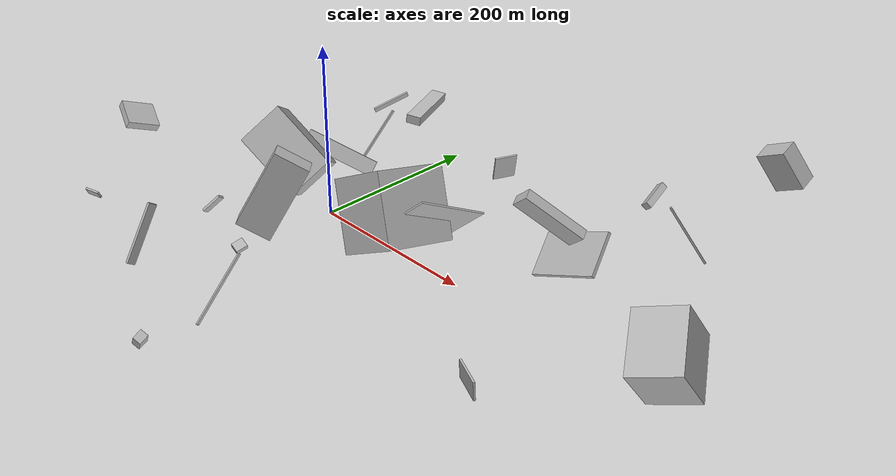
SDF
<sdf version="1.6">
 <world name="default">
  <scene>
   <sky><clouds><speed>12</speed></clouds></sky>
   <ambient>0.4 0.4 0.4 1</ambient>
   <background>0.7 0.7 0.7 1</background>
   <shadows>1</shadows>
  </scene>
  <gravity>0 0 -9.8066</gravity>
  <magnetic_field>6e-06 2.3e-05 -4.2e-05</magnetic_field>
  <physics default="0" name="default_physics" type="ode">
   <ode>
    <solver>
     <type>quick</type>
     <iters>10</iters>
     <sor>1.0</sor>
     <use_dynamic_moi_rescaling>0</use_dynamic_moi_rescaling>
    </solver>
    <constraints>
     <cfm>0</cfm>
     <erp>0.2</erp>
     <contact_max_correcting_vel>100</contact_max_correcting_vel>
     <contact_surface_layer>0.001</contact_surface_layer>
    </constraints>
   </ode>
   <max_step_size>0.004</max_step_size>
   <real_time_factor>1</real_time_factor>
   <real_time_update_rate>250</real_time_update_rate>
  </physics>
  <light name="sun" type="directional">
   <pose>0 0 10 0 0 0</pose>
   <diffuse>0.8 0.8 0.8 1</diffuse>
   <specular>0.2 0.2 0.2 1</specular>
   <attenuation>
    <range>1000</range>
    <constant>0.9</constant>
    <linear>0.01</linear>
    <quadratic>0.001</quadratic>
   </attenuation>
   <direction>-0.5 0.1 -0.9</direction>
  </light>
  <model name="building_1">
   <static>0</static>
   <pose>-6.447557590875202 164.78390926605329 72.39773657798332 0.32840268616260365 1.4576152847573998 -2.3852676535406427</pose>
   <link name="link">
    <gravity>0</gravity>
    <pose>0 0 8.5 0 0 0</pose>
    <collision name="collision"><geometry><box><size>10 80 17</size></box></geometry></collision>
    <visual name="visual">
     <cast_shadows>0</cast_shadows>
     <geometry><box><size>10 80 17</size></box></geometry>
     <material>
      <script>
       <uri>model://HANNAS_wall/materials/scripts</uri>
       <uri>model://HANNAS_wall/materials/textures</uri>
       <name>vrc/HANNAS_wall</name>
      </script>
     </material>
    </visual>
   </link>
  </model>
  <model name="building_2">
   <static>0</static>
   <pose>286.7653517202865 46.902354183824954 102.46931979818754 2.551336737582803 -0.6661779864026669 -2.3565618510237267</pose>
   <link name="link">
    <gravity>0</gravity>
    <pose>0 0 11.0 0 0 0</pose>
    <collision name="collision"><geometry><box><size>72 11 22</size></box></geometry></collision>
    <visual name="visual">
     <cast_shadows>0</cast_shadows>
     <geometry><box><size>72 11 22</size></box></geometry>
     <material>
      <script>
       <uri>model://HANNAS_wall/materials/scripts</uri>
       <uri>model://HANNAS_wall/materials/textures</uri>
       <name>vrc/HANNAS_wall</name>
      </script>
     </material>
    </visual>
   </link>
  </model>
  <model name="building_3">
   <static>0</static>
   <pose>42.546115004991506 28.99099549315713 61.7883027929175 1.1025642131273528 -0.48380457232371 -0.7459313777308747</pose>
   <link name="link">
    <gravity>0</gravity>
    <pose>0 0 40.0 0 0 0</pose>
    <collision name="collision"><geometry><box><size>9 17 80</size></box></geometry></collision>
    <visual name="visual">
     <cast_shadows>0</cast_shadows>
     <geometry><box><size>9 17 80</size></box></geometry>
     <material>
      <script>
       <uri>model://HANNAS_wall/materials/scripts</uri>
       <uri>model://HANNAS_wall/materials/textures</uri>
       <name>vrc/HANNAS_wall</name>
      </script>
     </material>
    </visual>
   </link>
  </model>
  <model name="building_4">
   <static>0</static>
   <pose>75.10144451144293 -198.84436308982075 26.94266111235453 0.5590833414045882 0.6013746304214567 -1.3346621504665377</pose>
   <link name="link">
    <gravity>0</gravity>
    <pose>0 0 1.0 0 0 0</pose>
    <collision name="collision"><geometry><box><size>80 4 2</size></box></geometry></collision>
    <visual name="visual">
     <cast_shadows>0</cast_shadows>
     <geometry><box><size>80 4 2</size></box></geometry>
     <material>
      <script>
       <uri>model://HANNAS_wall/materials/scripts</uri>
       <uri>model://HANNAS_wall/materials/textures</uri>
       <name>vrc/HANNAS_wall</name>
      </script>
     </material>
    </visual>
   </link>
  </model>
  <model name="building_5">
   <static>0</static>
   <pose>-11.335936418992985 -66.80196936323286 77.56720973423685 0.6658472836731935 -0.6830212310876818 -2.84878728538751</pose>
   <link name="link">
    <gravity>0</gravity>
    <pose>0 0 26.0 0 0 0</pose>
    <collision name="collision"><geometry><box><size>78 63 52</size></box></geometry></collision>
    <visual name="visual">
     <cast_shadows>0</cast_shadows>
     <geometry><box><size>78 63 52</size></box></geometry>
     <material>
      <script>
       <uri>model://HANNAS_wall/materials/scripts</uri>
       <uri>model://HANNAS_wall/materials/textures</uri>
       <name>vrc/HANNAS_wall</name>
      </script>
     </material>
    </visual>
   </link>
  </model>
  <model name="building_6">
   <static>0</static>
   <pose>437.1451112254753 27.00212449623085 67.86802863223637 -2.5981391445870545 -0.9316862826777965 -1.6178286248809155</pose>
   <link name="link">
    <gravity>0</gravity>
    <pose>0 0 32.5 0 0 0</pose>
    <collision name="collision"><geometry><box><size>61 52 65</size></box></geometry></collision>
    <visual name="visual">
     <cast_shadows>0</cast_shadows>
     <geometry><box><size>61 52 65</size></box></geometry>
     <material>
      <script>
       <uri>model://HANNAS_wall/materials/scripts</uri>
       <uri>model://HANNAS_wall/materials/textures</uri>
       <name>vrc/HANNAS_wall</name>
      </script>
     </material>
    </visual>
   </link>
  </model>
  <model name="building_7">
   <static>0</static>
   <pose>-79.71010903800847 -231.61820808633271 80.96055342526616 -1.5092500493348842 -0.49675618405428346 1.8521457614121364</pose>
   <link name="link">
    <gravity>0</gravity>
    <pose>0 0 8.0 0 0 0</pose>
    <collision name="collision"><geometry><box><size>2 9 16</size></box></geometry></collision>
    <visual name="visual">
     <cast_shadows>0</cast_shadows>
     <geometry><box><size>2 9 16</size></box></geometry>
     <material>
      <script>
       <uri>model://HANNAS_wall/materials/scripts</uri>
       <uri>model://HANNAS_wall/materials/textures</uri>
       <name>vrc/HANNAS_wall</name>
      </script>
     </material>
    </visual>
   </link>
  </model>
  <model name="building_8">
   <static>0</static>
   <pose>302.5414179756485 42.04839182066536 42.16096200218101 0.8752529534339261 0.4193833200392661 -3.1394071593468644</pose>
   <link name="link">
    <gravity>0</gravity>
    <pose>0 0 24.0 0 0 0</pose>
    <collision name="collision"><geometry><box><size>80 4 48</size></box></geometry></collision>
    <visual name="visual">
     <cast_shadows>0</cast_shadows>
     <geometry><box><size>80 4 48</size></box></geometry>
     <material>
      <script>
       <uri>model://HANNAS_wall/materials/scripts</uri>
       <uri>model://HANNAS_wall/materials/textures</uri>
       <name>vrc/HANNAS_wall</name>
      </script>
     </material>
    </visual>
   </link>
  </model>
  <model name="building_9">
   <static>0</static>
   <pose>98.13879683273063 179.00511663227851 31.559970219241166 1.847553399971742 -0.03471232853224298 1.1304986492509839</pose>
   <link name="link">
    <gravity>0</gravity>
    <pose>0 0 1.0 0 0 0</pose>
    <collision name="collision"><geometry><box><size>26 32 2</size></box></geometry></collision>
    <visual name="visual">
     <cast_shadows>0</cast_shadows>
     <geometry><box><size>26 32 2</size></box></geometry>
     <material>
      <script>
       <uri>model://HANNAS_wall/materials/scripts</uri>
       <uri>model://HANNAS_wall/materials/textures</uri>
       <name>vrc/HANNAS_wall</name>
      </script>
     </material>
    </visual>
   </link>
  </model>
  <model name="building_10">
   <static>0</static>
   <pose>85.21701640801784 -290.26650945533254 16.035599453598625 0.9854899157205048 0.35818052352089524 -1.4194011551756986</pose>
   <link name="link">
    <gravity>0</gravity>
    <pose>0 0 4.5 0 0 0</pose>
    <collision name="collision"><geometry><box><size>11 17 9</size></box></geometry></collision>
    <visual name="visual">
     <cast_shadows>0</cast_shadows>
     <geometry><box><size>11 17 9</size></box></geometry>
     <material>
      <script>
       <uri>model://HANNAS_wall/materials/scripts</uri>
       <uri>model://HANNAS_wall/materials/textures</uri>
       <name>vrc/HANNAS_wall</name>
      </script>
     </material>
    </visual>
   </link>
  </model>
  <model name="building_11">
   <static>0</static>
   <pose>59.557439531734424 43.45929914686775 22.57774066487254 -0.7068381730014947 -0.1796657941618744 -1.8736542945291264</pose>
   <link name="link">
    <gravity>0</gravity>
    <pose>0 0 3.0 0 0 0</pose>
    <collision name="collision"><geometry><box><size>51 32 6</size></box></geometry></collision>
    <visual name="visual">
     <cast_shadows>0</cast_shadows>
     <geometry><box><size>51 32 6</size></box></geometry>
     <material>
      <script>
       <uri>model://HANNAS_wall/materials/scripts</uri>
       <uri>model://HANNAS_wall/materials/textures</uri>
       <name>vrc/HANNAS_wall</name>
      </script>
     </material>
    </visual>
   </link>
  </model>
  <model name="building_12">
   <static>0</static>
   <pose>-79.24935292522879 -192.24922741104615 158.59237909524472 2.310694820975517 1.0078887897411613 -2.6566092604635636</pose>
   <link name="link">
    <gravity>0</gravity>
    <pose>0 0 16.5 0 0 0</pose>
    <collision name="collision"><geometry><box><size>8 30 33</size></box></geometry></collision>
    <visual name="visual">
     <cast_shadows>0</cast_shadows>
     <geometry><box><size>8 30 33</size></box></geometry>
     <material>
      <script>
       <uri>model://HANNAS_wall/materials/scripts</uri>
       <uri>model://HANNAS_wall/materials/textures</uri>
       <name>vrc/HANNAS_wall</name>
      </script>
     </material>
    </visual>
   </link>
  </model>
  <model name="building_13">
   <static>0</static>
   <pose>386.66356675136456 155.57837755993143 46.110207836778315 -0.09514116081447381 0.5606855542101075 -2.3140367291977277</pose>
   <link name="link">
    <gravity>0</gravity>
    <pose>0 0 40.0 0 0 0</pose>
    <collision name="collision"><geometry><box><size>2 2 80</size></box></geometry></collision>
    <visual name="visual">
     <cast_shadows>0</cast_shadows>
     <geometry><box><size>2 2 80</size></box></geometry>
     <material>
      <script>
       <uri>model://HANNAS_wall/materials/scripts</uri>
       <uri>model://HANNAS_wall/materials/textures</uri>
       <name>vrc/HANNAS_wall</name>
      </script>
     </material>
    </visual>
   </link>
  </model>
  <model name="building_14">
   <static>0</static>
   <pose>16.351434267389322 -133.6045674908075 19.736052820368123 0.46783253713552 -0.2764267966486354 1.3940117484222703</pose>
   <link name="link">
    <gravity>0</gravity>
    <pose>0 0 3.0 0 0 0</pose>
    <collision name="collision"><geometry><box><size>13 11 6</size></box></geometry></collision>
    <visual name="visual">
     <cast_shadows>0</cast_shadows>
     <geometry><box><size>13 11 6</size></box></geometry>
     <material>
      <script>
       <uri>model://HANNAS_wall/materials/scripts</uri>
       <uri>model://HANNAS_wall/materials/textures</uri>
       <name>vrc/HANNAS_wall</name>
      </script>
     </material>
    </visual>
   </link>
  </model>
  <model name="building_15">
   <static>0</static>
   <pose>432.5228698286654 167.24611946846636 164.92848962898896 1.0617398820901915 -0.31485610613182785 1.6341315453857987</pose>
   <link name="link">
    <gravity>0</gravity>
    <pose>0 0 15.0 0 0 0</pose>
    <collision name="collision"><geometry><box><size>18 39 30</size></box></geometry></collision>
    <visual name="visual">
     <cast_shadows>0</cast_shadows>
     <geometry><box><size>18 39 30</size></box></geometry>
     <material>
      <script>
       <uri>model://HANNAS_wall/materials/scripts</uri>
       <uri>model://HANNAS_wall/materials/textures</uri>
       <name>vrc/HANNAS_wall</name>
      </script>
     </material>
    </visual>
   </link>
  </model>
  <model name="building_16">
   <static>0</static>
   <pose>-32.1031800286252 94.60623610403053 47.99000069718585 2.3033165729170473 0.317821154274089 2.7649758737737526</pose>
   <link name="link">
    <gravity>0</gravity>
    <pose>0 0 1.0 0 0 0</pose>
    <collision name="collision"><geometry><box><size>4 80 2</size></box></geometry></collision>
    <visual name="visual">
     <cast_shadows>0</cast_shadows>
     <geometry><box><size>4 80 2</size></box></geometry>
     <material>
      <script>
       <uri>model://HANNAS_wall/materials/scripts</uri>
       <uri>model://HANNAS_wall/materials/textures</uri>
       <name>vrc/HANNAS_wall</name>
      </script>
     </material>
    </visual>
   </link>
  </model>
  <model name="building_17">
   <static>0</static>
   <pose>110.59883275618053 -47.071886946248924 64.99258652602215 -1.7912888381745935 -0.4956256762984618 -0.023260183501105047</pose>
   <link name="link">
    <gravity>0</gravity>
    <pose>0 0 40.0 0 0 0</pose>
    <collision name="collision"><geometry><box><size>80 80 80</size></box></geometry></collision>
    <visual name="visual">
     <cast_shadows>0</cast_shadows>
     <geometry><box><size>80 80 80</size></box></geometry>
     <material>
      <script>
       <uri>model://HANNAS_wall/materials/scripts</uri>
       <uri>model://HANNAS_wall/materials/textures</uri>
       <name>vrc/HANNAS_wall</name>
      </script>
     </material>
    </visual>
   </link>
  </model>
  <model name="building_18">
   <static>0</static>
   <pose>-84.37137204175842 168.80051165942254 53.35189220565609 -1.206899811908339 -0.36696809768697664 1.1207100890827661</pose>
   <link name="link">
    <gravity>0</gravity>
    <pose>0 0 1.0 0 0 0</pose>
    <collision name="collision"><geometry><box><size>45 7 2</size></box></geometry></collision>
    <visual name="visual">
     <cast_shadows>0</cast_shadows>
     <geometry><box><size>45 7 2</size></box></geometry>
     <material>
      <script>
       <uri>model://HANNAS_wall/materials/scripts</uri>
       <uri>model://HANNAS_wall/materials/textures</uri>
       <name>vrc/HANNAS_wall</name>
      </script>
     </material>
    </visual>
   </link>
  </model>
  <model name="building_19">
   <static>0</static>
   <pose>136.43257239870442 -151.27474704891813 131.440391516016 -0.16846007306083532 -1.0489835809552825 0.9425256481881777</pose>
   <link name="link">
    <gravity>0</gravity>
    <pose>0 0 17.5 0 0 0</pose>
    <collision name="collision"><geometry><box><size>80 20 35</size></box></geometry></collision>
    <visual name="visual">
     <cast_shadows>0</cast_shadows>
     <geometry><box><size>80 20 35</size></box></geometry>
     <material>
      <script>
       <uri>model://HANNAS_wall/materials/scripts</uri>
       <uri>model://HANNAS_wall/materials/textures</uri>
       <name>vrc/HANNAS_wall</name>
      </script>
     </material>
    </visual>
   </link>
  </model>
  <model name="building_20">
   <static>0</static>
   <pose>166.37195002788332 45.84949780141137 39.39450702411341 0.9633504603637849 -0.7436849650627986 0.20969552437499625</pose>
   <link name="link">
    <gravity>0</gravity>
    <pose>0 0 40.0 0 0 0</pose>
    <collision name="collision"><geometry><box><size>62 2 80</size></box></geometry></collision>
    <visual name="visual">
     <cast_shadows>0</cast_shadows>
     <geometry><box><size>62 2 80</size></box></geometry>
     <material>
      <script>
       <uri>model://HANNAS_wall/materials/scripts</uri>
       <uri>model://HANNAS_wall/materials/textures</uri>
       <name>vrc/HANNAS_wall</name>
      </script>
     </material>
    </visual>
   </link>
  </model>
  <model name="building_21">
   <static>0</static>
   <pose>461.9210186393892 -3.360633255805117 40.678645999973234 0.990296650672047 -0.16633763465769957 -1.5681343156103313</pose>
   <link name="link">
    <gravity>0</gravity>
    <pose>0 0 2.0 0 0 0</pose>
    <collision name="collision"><geometry><box><size>2 35 4</size></box></geometry></collision>
    <visual name="visual">
     <cast_shadows>0</cast_shadows>
     <geometry><box><size>2 35 4</size></box></geometry>
     <material>
      <script>
       <uri>model://HANNAS_wall/materials/scripts</uri>
       <uri>model://HANNAS_wall/materials/textures</uri>
       <name>vrc/HANNAS_wall</name>
      </script>
     </material>
    </visual>
   </link>
  </model>
  <model name="building_22">
   <static>0</static>
   <pose>364.72924558777015 -151.86906813265747 59.60845806263351 1.5471990861815466 0.07706817037141302 2.6724143910902223</pose>
   <link name="link">
    <gravity>0</gravity>
    <pose>0 0 1.0 0 0 0</pose>
    <collision name="collision"><geometry><box><size>36 18 2</size></box></geometry></collision>
    <visual name="visual">
     <cast_shadows>0</cast_shadows>
     <geometry><box><size>36 18 2</size></box></geometry>
     <material>
      <script>
       <uri>model://HANNAS_wall/materials/scripts</uri>
       <uri>model://HANNAS_wall/materials/textures</uri>
       <name>vrc/HANNAS_wall</name>
      </script>
     </material>
    </visual>
   </link>
  </model>
  <model name="building_23">
   <static>0</static>
   <pose>253.77358425648416 260.0484142106239 26.516856534952833 2.3529840469838827 0.33998500769076834 -1.4421525365157535</pose>
   <link name="link">
    <gravity>0</gravity>
    <pose>0 0 5.0 0 0 0</pose>
    <collision name="collision"><geometry><box><size>35 8 10</size></box></geometry></collision>
    <visual name="visual">
     <cast_shadows>0</cast_shadows>
     <geometry><box><size>35 8 10</size></box></geometry>
     <material>
      <script>
       <uri>model://HANNAS_wall/materials/scripts</uri>
       <uri>model://HANNAS_wall/materials/textures</uri>
       <name>vrc/HANNAS_wall</name>
      </script>
     </material>
    </visual>
   </link>
  </model>
  <model name="building_24">
   <static>0</static>
   <pose>-38.55089754982088 -212.64757868499925 44.511115727796394 -1.7203021327007293 -1.0142187642840756 1.6288636445461122</pose>
   <link name="link">
    <gravity>0</gravity>
    <pose>0 0 2.0 0 0 0</pose>
    <collision name="collision"><geometry><box><size>66 9 4</size></box></geometry></collision>
    <visual name="visual">
     <cast_shadows>0</cast_shadows>
     <geometry><box><size>66 9 4</size></box></geometry>
     <material>
      <script>
       <uri>model://HANNAS_wall/materials/scripts</uri>
       <uri>model://HANNAS_wall/materials/textures</uri>
       <name>vrc/HANNAS_wall</name>
      </script>
     </material>
    </visual>
   </link>
  </model>
  <model name="building_25">
   <static>0</static>
   <pose>-84.85981381930497 -87.26033192632447 20.090808589483714 2.5378876143009013 -0.5957345365906814 -1.3875176670868274</pose>
   <link name="link">
    <gravity>0</gravity>
    <pose>0 0 13.0 0 0 0</pose>
    <collision name="collision"><geometry><box><size>8 3 26</size></box></geometry></collision>
    <visual name="visual">
     <cast_shadows>0</cast_shadows>
     <geometry><box><size>8 3 26</size></box></geometry>
     <material>
      <script>
       <uri>model://HANNAS_wall/materials/scripts</uri>
       <uri>model://HANNAS_wall/materials/textures</uri>
       <name>vrc/HANNAS_wall</name>
      </script>
     </material>
    </visual>
   </link>
  </model>
 </world>
</sdf>
